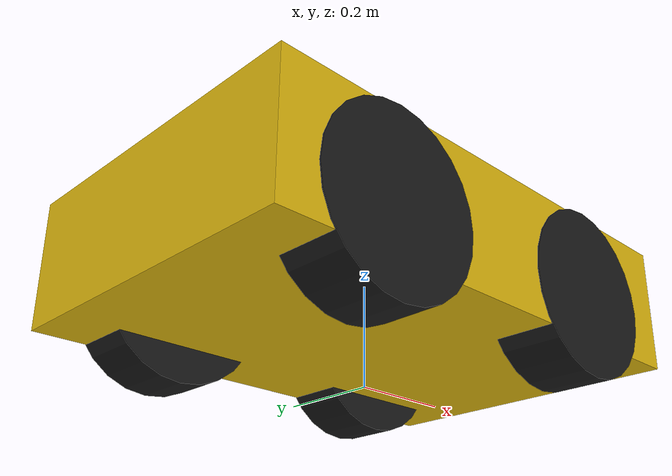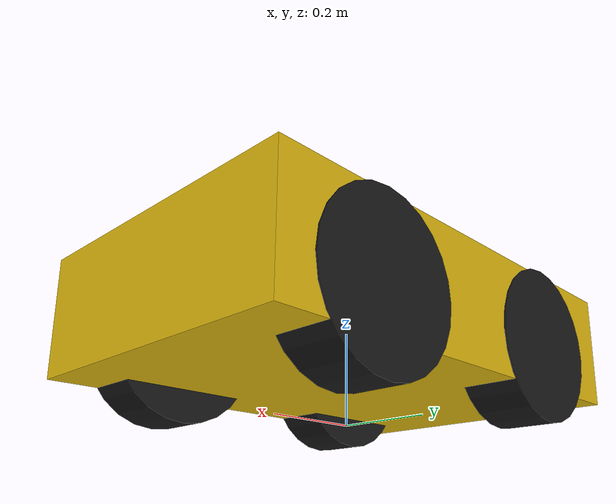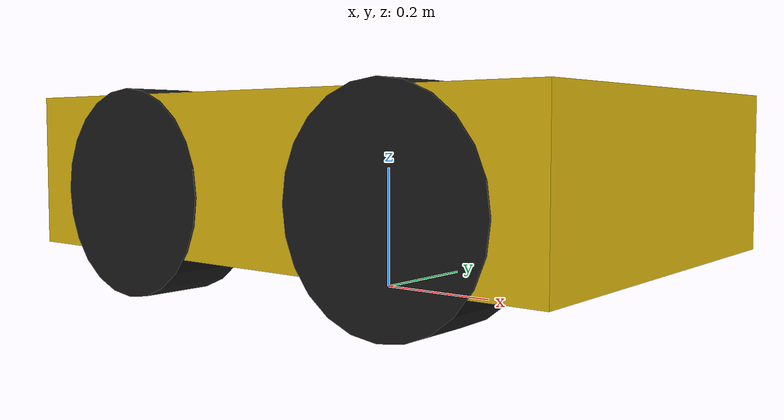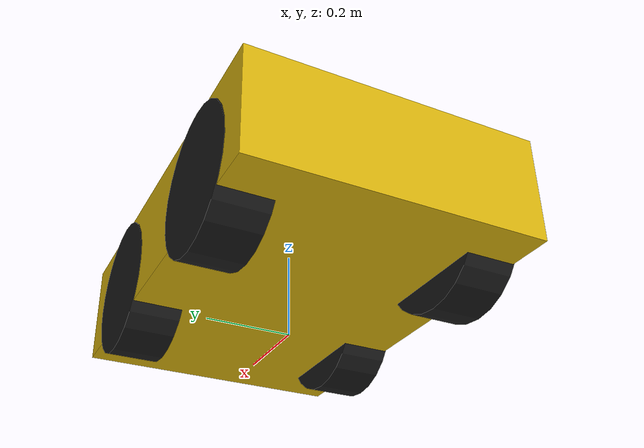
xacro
<?xml version="1.0"?>
<robot name="husky" xmlns:xacro="http://www.ros.org/wiki/xacro">

  <!-- ============================ PARAMETERS ============================ -->
  <xacro:property name="base_length" value="0.99"/>
  <xacro:property name="base_width"  value="0.67"/>
  <xacro:property name="base_height" value="0.25"/>   <!-- chassis box only -->
  <xacro:property name="base_mass"   value="33.0"/>

  <xacro:property name="wheel_radius" value="0.1651"/>
  <xacro:property name="wheel_width"  value="0.12"/>
  <xacro:property name="wheel_mass"   value="2.6"/>
  <xacro:property name="track"        value="0.555"/>  <!-- centre-to-centre, left/right -->
  <xacro:property name="wheelbase"    value="0.512"/>  <!-- centre-to-centre, front/rear -->

  <!-- height of chassis bottom above ground so wheels touch the floor -->
  <xacro:property name="base_z" value="${wheel_radius + 0.03}"/>

  <!-- Camera mount: front face of chassis, low, tilted down ~15 deg -->
  <xacro:property name="cam_x"     value="${base_length/2 - 0.02}"/>
  <xacro:property name="cam_z"     value="0.10"/>
  <xacro:property name="cam_pitch" value="0.26"/>     <!-- ~15 deg downward -->

  <xacro:property name="PI" value="3.14159265359"/>

  <!-- ============================ MACROS ============================ -->
  <xacro:macro name="box_inertia" params="m x y z">
    <inertial>
      <mass value="${m}"/>
      <inertia ixx="${m*(y*y+z*z)/12.0}" ixy="0.0" ixz="0.0"
               iyy="${m*(x*x+z*z)/12.0}" iyz="0.0"
               izz="${m*(x*x+y*y)/12.0}"/>
    </inertial>
  </xacro:macro>

  <xacro:macro name="cyl_inertia" params="m r l">
    <inertial>
      <mass value="${m}"/>
      <inertia ixx="${m*(3*r*r+l*l)/12.0}" ixy="0.0" ixz="0.0"
               iyy="${m*(3*r*r+l*l)/12.0}" iyz="0.0"
               izz="${m*r*r/2.0}"/>
    </inertial>
  </xacro:macro>

  <!-- A single wheel + its continuous joint -->
  <xacro:macro name="wheel" params="name x y">
    <link name="${name}_wheel_link">
      <visual>
        <origin xyz="0 0 0" rpy="${PI/2} 0 0"/>
        <geometry><cylinder radius="${wheel_radius}" length="${wheel_width}"/></geometry>
        <material name="dark"><color rgba="0.1 0.1 0.1 1"/></material>
      </visual>
      <collision>
        <origin xyz="0 0 0" rpy="${PI/2} 0 0"/>
        <geometry><cylinder radius="${wheel_radius}" length="${wheel_width}"/></geometry>
      </collision>
      <xacro:cyl_inertia m="${wheel_mass}" r="${wheel_radius}" l="${wheel_width}"/>
    </link>

    <joint name="${name}_wheel_joint" type="continuous">
      <parent link="base_link"/>
      <child link="${name}_wheel_link"/>
      <origin xyz="${x} ${y} ${-base_z + wheel_radius - 0.0}" rpy="0 0 0"/>
      <axis xyz="0 1 0"/>
    </joint>

    <gazebo reference="${name}_wheel_link">
      <!-- The base is driven kinematically by gazebo_ros_planar_move, so the
           wheels are passive; make them frictionless so they slide freely and
           do not fight the commanded body motion. -->
      <mu1>0.0</mu1>
      <mu2>0.0</mu2>
      <kp>1e6</kp>
      <kd>100.0</kd>
      <material>Gazebo/DarkGrey</material>
    </gazebo>
  </xacro:macro>

  <!-- ============================ BASE ============================ -->
  <!-- base_footprint: planar projection on the ground, used as the Nav2 base -->
  <link name="base_footprint"/>

  <link name="base_link">
    <visual>
      <origin xyz="0 0 0" rpy="0 0 0"/>
      <geometry><box size="${base_length} ${base_width} ${base_height}"/></geometry>
      <material name="husky_yellow"><color rgba="0.85 0.7 0.05 1"/></material>
    </visual>
    <collision>
      <origin xyz="0 0 0" rpy="0 0 0"/>
      <geometry><box size="${base_length} ${base_width} ${base_height}"/></geometry>
    </collision>
    <xacro:box_inertia m="${base_mass}" x="${base_length}" y="${base_width}" z="${base_height}"/>
  </link>

  <joint name="base_footprint_joint" type="fixed">
    <parent link="base_footprint"/>
    <child link="base_link"/>
    <origin xyz="0 0 ${base_z}" rpy="0 0 0"/>
  </joint>

  <!-- four wheels -->
  <xacro:wheel name="front_left"  x="${ wheelbase/2}" y="${ track/2}"/>
  <xacro:wheel name="front_right" x="${ wheelbase/2}" y="${-track/2}"/>
  <xacro:wheel name="rear_left"   x="${-wheelbase/2}" y="${ track/2}"/>
  <xacro:wheel name="rear_right"  x="${-wheelbase/2}" y="${-track/2}"/>

  <!-- ============================ CAMERA ============================ -->
  <!-- RealSense body -->
  <link name="camera_link">
    <visual>
      <origin xyz="0 0 0" rpy="0 0 0"/>
      <geometry><box size="0.025 0.090 0.025"/></geometry>
      <material name="cam_grey"><color rgba="0.2 0.2 0.2 1"/></material>
    </visual>
    <collision>
      <geometry><box size="0.025 0.090 0.025"/></geometry>
    </collision>
    <inertial>
      <mass value="0.072"/>
      <inertia ixx="1e-4" ixy="0" ixz="0" iyy="1e-4" iyz="0" izz="1e-4"/>
    </inertial>
  </link>

  <joint name="camera_joint" type="fixed">
    <parent link="base_link"/>
    <child link="camera_link"/>
    <origin xyz="${cam_x} 0 ${cam_z}" rpy="0 ${cam_pitch} 0"/>
  </joint>

  <!-- Optical frame: REP-103 optical convention (z forward, x right, y down) -->
  <link name="camera_depth_optical_frame"/>
  <joint name="camera_optical_joint" type="fixed">
    <parent link="camera_link"/>
    <child link="camera_depth_optical_frame"/>
    <origin xyz="0 0 0" rpy="${-PI/2} 0 ${-PI/2}"/>
  </joint>

  <!-- ============================ GAZEBO PLUGINS ============================ -->
  <xacro:include filename="$(find farm_description)/urdf/husky.gazebo.xacro"/>

</robot>
